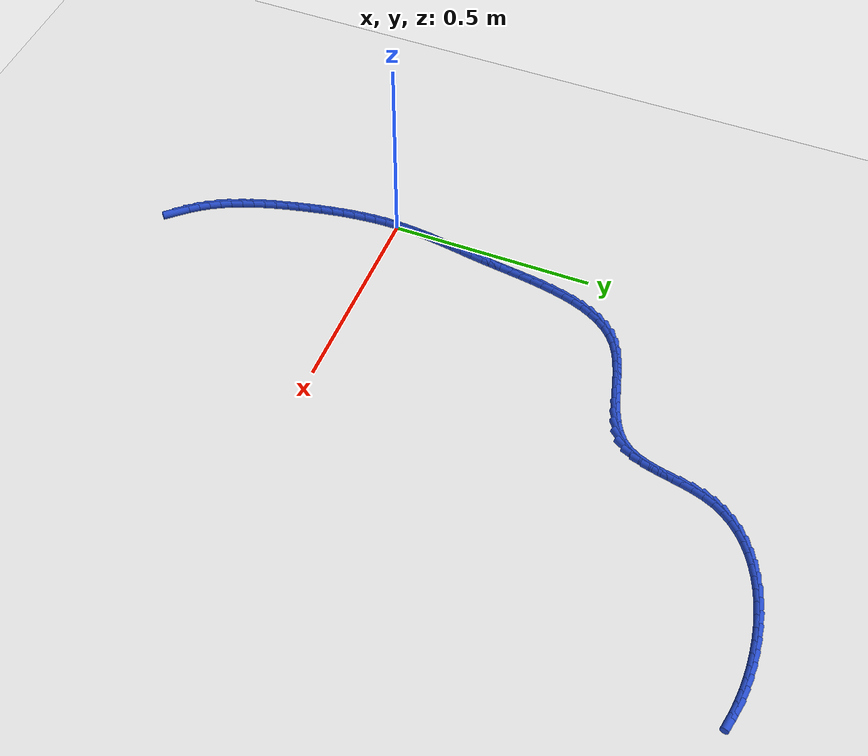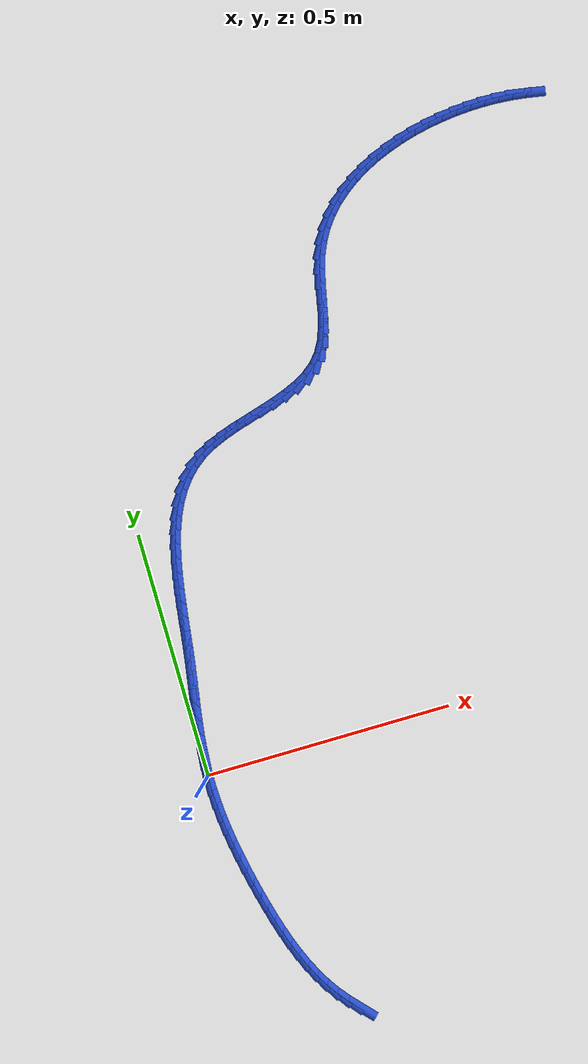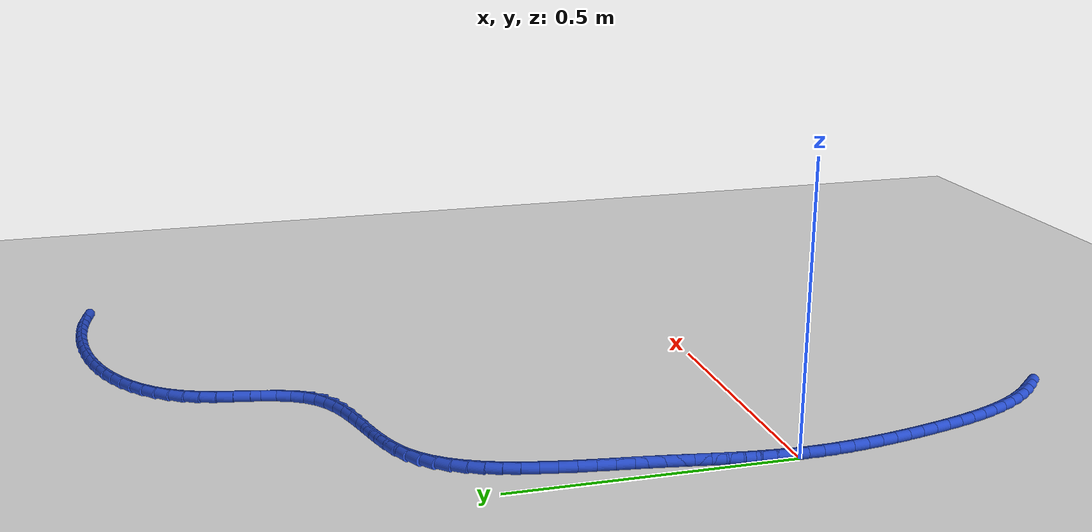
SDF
<sdf version="1.6">
 <world name="default">
  <model name="ground_plane">
   <static>1</static>
   <link name="link">
    <collision name="collision">
     <geometry><plane><normal>0 0 1</normal><size>100 100</size></plane></geometry>
     <surface><friction><ode><mu>100</mu><mu2>50</mu2></ode></friction></surface>
    </collision>
    <visual name="visual">
     <cast_shadows>0</cast_shadows>
     <geometry><plane><normal>0 0 1</normal><size>100 100</size></plane></geometry>
     <material>
      <script><uri>file://media/materials/scripts/gazebo.material</uri><name>Gazebo/WhiteGlow</name></script>
     </material>
    </visual>
   </link>
  </model>
  <model name="line">
   <link name="link_0">
    <pose>-2.2551405187698492e-17 7.632783294297951e-17 0.01 0 1.57 1.5288824515302042</pose>
    <collision name="collision">
     <geometry><cylinder><radius>0.01</radius><length>0.08</length></cylinder></geometry>
    </collision>
    <visual name="visual">
     <material>
      <script><name>Gazebo/Blue</name><uri>file://media/materials/scripts/gazebo.material</uri></script>
     </material>
     <geometry><cylinder><radius>0.01</radius><length>0.08</length></cylinder></geometry>
    </visual>
   </link>
   <link name="link_1">
    <pose>0.0011407970177380307 0.027201705684375417 0.01 0 1.57 1.4927546398349003</pose>
    <collision name="collision">
     <geometry><cylinder><radius>0.01</radius><length>0.08</length></cylinder></geometry>
    </collision>
    <visual name="visual">
     <material>
      <script><name>Gazebo/Blue</name><uri>file://media/materials/scripts/gazebo.material</uri></script>
     </material>
     <geometry><cylinder><radius>0.01</radius><length>0.08</length></cylinder></geometry>
    </visual>
   </link>
   <link name="link_2">
    <pose>0.0032627780462168104 0.054336835409915456 0.01 0 1.57 1.4630782804298281</pose>
    <collision name="collision">
     <geometry><cylinder><radius>0.01</radius><length>0.08</length></cylinder></geometry>
    </collision>
    <visual name="visual">
     <material>
      <script><name>Gazebo/Blue</name><uri>file://media/materials/scripts/gazebo.material</uri></script>
     </material>
     <geometry><cylinder><radius>0.01</radius><length>0.08</length></cylinder></geometry>
    </visual>
   </link>
   <link name="link_3">
    <pose>0.0062002938739071645 0.08150169424468343 0.01 0 1.57 1.4400951984167762</pose>
    <collision name="collision">
     <geometry><cylinder><radius>0.01</radius><length>0.08</length></cylinder></geometry>
    </collision>
    <visual name="visual">
     <material>
      <script><name>Gazebo/Blue</name><uri>file://media/materials/scripts/gazebo.material</uri></script>
     </material>
     <geometry><cylinder><radius>0.01</radius><length>0.08</length></cylinder></geometry>
    </visual>
   </link>
   <link name="link_4">
    <pose>0.009787695289279938 0.10879258725674242 0.01 0 1.57 1.4238743431690295</pose>
    <collision name="collision">
     <geometry><cylinder><radius>0.01</radius><length>0.08</length></cylinder></geometry>
    </collision>
    <visual name="visual">
     <material>
      <script><name>Gazebo/Blue</name><uri>file://media/materials/scripts/gazebo.material</uri></script>
     </material>
     <geometry><cylinder><radius>0.01</radius><length>0.08</length></cylinder></geometry>
    </visual>
   </link>
   <link name="link_5">
    <pose>0.013859333080805973 0.13630581951415557 0.01 0 1.57 1.4143445588500612</pose>
    <collision name="collision">
     <geometry><cylinder><radius>0.01</radius><length>0.08</length></cylinder></geometry>
    </collision>
    <visual name="visual">
     <material>
      <script><name>Gazebo/Blue</name><uri>file://media/materials/scripts/gazebo.material</uri></script>
     </material>
     <geometry><cylinder><radius>0.01</radius><length>0.08</length></cylinder></geometry>
    </visual>
   </link>
   <link name="link_6">
    <pose>0.01824955803695613 0.16413769608498616 0.01 0 1.57 1.4113240917865437</pose>
    <collision name="collision">
     <geometry><cylinder><radius>0.01</radius><length>0.08</length></cylinder></geometry>
    </collision>
    <visual name="visual">
     <material>
      <script><name>Gazebo/Blue</name><uri>file://media/materials/scripts/gazebo.material</uri></script>
     </material>
     <geometry><cylinder><radius>0.01</radius><length>0.08</length></cylinder></geometry>
    </visual>
   </link>
   <link name="link_7">
    <pose>0.022792720946201238 0.19238452203729717 0.01 0 1.57 1.4145438455632329</pose>
    <collision name="collision">
     <geometry><cylinder><radius>0.01</radius><length>0.08</length></cylinder></geometry>
    </collision>
    <visual name="visual">
     <material>
      <script><name>Gazebo/Blue</name><uri>file://media/materials/scripts/gazebo.material</uri></script>
     </material>
     <geometry><cylinder><radius>0.01</radius><length>0.08</length></cylinder></geometry>
    </visual>
   </link>
   <link name="link_8">
    <pose>0.027323172597012148 0.22114260243915182 0.01 0 1.57 1.4236632106234344</pose>
    <collision name="collision">
     <geometry><cylinder><radius>0.01</radius><length>0.08</length></cylinder></geometry>
    </collision>
    <visual name="visual">
     <material>
      <script><name>Gazebo/Blue</name><uri>file://media/materials/scripts/gazebo.material</uri></script>
     </material>
     <geometry><cylinder><radius>0.01</radius><length>0.08</length></cylinder></geometry>
    </visual>
   </link>
   <link name="link_9">
    <pose>0.031675279186698053 0.2505082290229851 0.01 0 1.57 1.4353594793840894</pose>
    <collision name="collision">
     <geometry><cylinder><radius>0.01</radius><length>0.08</length></cylinder></geometry>
    </collision>
    <visual name="visual">
     <material>
      <script><name>Gazebo/Blue</name><uri>file://media/materials/scripts/gazebo.material</uri></script>
     </material>
     <geometry><cylinder><radius>0.01</radius><length>0.08</length></cylinder></geometry>
    </visual>
   </link>
   <link name="link_10">
    <pose>0.03576343894935562 0.2805084295396522 0.01 0 1.57 1.4399337824951841</pose>
    <collision name="collision">
     <geometry><cylinder><radius>0.01</radius><length>0.08</length></cylinder></geometry>
    </collision>
    <visual name="visual">
     <material>
      <script><name>Gazebo/Blue</name><uri>file://media/materials/scripts/gazebo.material</uri></script>
     </material>
     <geometry><cylinder><radius>0.01</radius><length>0.08</length></cylinder></geometry>
    </visual>
   </link>
   <link name="link_11">
    <pose>0.03976861907742631 0.31093952878452275 0.01 0 1.57 1.4357670377201683</pose>
    <collision name="collision">
     <geometry><cylinder><radius>0.01</radius><length>0.08</length></cylinder></geometry>
    </collision>
    <visual name="visual">
     <material>
      <script><name>Gazebo/Blue</name><uri>file://media/materials/scripts/gazebo.material</uri></script>
     </material>
     <geometry><cylinder><radius>0.01</radius><length>0.08</length></cylinder></geometry>
    </visual>
   </link>
   <link name="link_12">
    <pose>0.04392721804772479 0.34154987837105244 0.01 0 1.57 1.4229402103571562</pose>
    <collision name="collision">
     <geometry><cylinder><radius>0.01</radius><length>0.08</length></cylinder></geometry>
    </collision>
    <visual name="visual">
     <material>
      <script><name>Gazebo/Blue</name><uri>file://media/materials/scripts/gazebo.material</uri></script>
     </material>
     <geometry><cylinder><radius>0.01</radius><length>0.08</length></cylinder></geometry>
    </visual>
   </link>
   <link name="link_13">
    <pose>0.048475634337065726 0.372087829912697 0.01 0 1.57 1.4011754274274089</pose>
    <collision name="collision">
     <geometry><cylinder><radius>0.01</radius><length>0.08</length></cylinder></geometry>
    </collision>
    <visual name="visual">
     <material>
      <script><name>Gazebo/Blue</name><uri>file://media/materials/scripts/gazebo.material</uri></script>
     </material>
     <geometry><cylinder><radius>0.01</radius><length>0.08</length></cylinder></geometry>
    </visual>
   </link>
   <link name="link_14">
    <pose>0.053650266422263705 0.40230173502291156 0.01 0 1.57 1.3698474683712236</pose>
    <collision name="collision">
     <geometry><cylinder><radius>0.01</radius><length>0.08</length></cylinder></geometry>
    </collision>
    <visual name="visual">
     <material>
      <script><name>Gazebo/Blue</name><uri>file://media/materials/scripts/gazebo.material</uri></script>
     </material>
     <geometry><cylinder><radius>0.01</radius><length>0.08</length></cylinder></geometry>
    </visual>
   </link>
   <link name="link_15">
    <pose>0.05968751278013341 0.43193994531515206 0.01 0 1.57 1.3279898391232734</pose>
    <collision name="collision">
     <geometry><cylinder><radius>0.01</radius><length>0.08</length></cylinder></geometry>
    </collision>
    <visual name="visual">
     <material>
      <script><name>Gazebo/Blue</name><uri>file://media/materials/scripts/gazebo.material</uri></script>
     </material>
     <geometry><cylinder><radius>0.01</radius><length>0.08</length></cylinder></geometry>
    </visual>
   </link>
   <link name="link_16">
    <pose>0.06682377188748949 0.4607508124028741 0.01 0 1.57 1.2743151041964649</pose>
    <collision name="collision">
     <geometry><cylinder><radius>0.01</radius><length>0.08</length></cylinder></geometry>
    </collision>
    <visual name="visual">
     <material>
      <script><name>Gazebo/Blue</name><uri>file://media/materials/scripts/gazebo.material</uri></script>
     </material>
     <geometry><cylinder><radius>0.01</radius><length>0.08</length></cylinder></geometry>
    </visual>
   </link>
   <link name="link_17">
    <pose>0.07529544222114658 0.4884826878995333 0.01 0 1.57 1.207284943718517</pose>
    <collision name="collision">
     <geometry><cylinder><radius>0.01</radius><length>0.08</length></cylinder></geometry>
    </collision>
    <visual name="visual">
     <material>
      <script><name>Gazebo/Blue</name><uri>file://media/materials/scripts/gazebo.material</uri></script>
     </material>
     <geometry><cylinder><radius>0.01</radius><length>0.08</length></cylinder></geometry>
    </visual>
   </link>
   <link name="link_18">
    <pose>0.08533892225791934 0.5148839234185851 0.01 0 1.57 1.1252891621408851</pose>
    <collision name="collision">
     <geometry><cylinder><radius>0.01</radius><length>0.08</length></cylinder></geometry>
    </collision>
    <visual name="visual">
     <material>
      <script><name>Gazebo/Blue</name><uri>file://media/materials/scripts/gazebo.material</uri></script>
     </material>
     <geometry><cylinder><radius>0.01</radius><length>0.08</length></cylinder></geometry>
    </visual>
   </link>
   <link name="link_19">
    <pose>0.09719061047462232 0.5397028705734853 0.01 0 1.57 1.0270154323651437</pose>
    <collision name="collision">
     <geometry><cylinder><radius>0.01</radius><length>0.08</length></cylinder></geometry>
    </collision>
    <visual name="visual">
     <material>
      <script><name>Gazebo/Blue</name><uri>file://media/materials/scripts/gazebo.material</uri></script>
     </material>
     <geometry><cylinder><radius>0.01</radius><length>0.08</length></cylinder></geometry>
    </visual>
   </link>
   <link name="link_20">
    <pose>0.11108690534807034 0.5626878809776895 0.01 0 1.57 0.9120770612071802</pose>
    <collision name="collision">
     <geometry><cylinder><radius>0.01</radius><length>0.08</length></cylinder></geometry>
    </collision>
    <visual name="visual">
     <material>
      <script><name>Gazebo/Blue</name><uri>file://media/materials/scripts/gazebo.material</uri></script>
     </material>
     <geometry><cylinder><radius>0.01</radius><length>0.08</length></cylinder></geometry>
    </visual>
   </link>
   <link name="link_21">
    <pose>0.12726420535507788 0.583587306244653 0.01 0 1.57 0.7818414710279133</pose>
    <collision name="collision">
     <geometry><cylinder><radius>0.01</radius><length>0.08</length></cylinder></geometry>
    </collision>
    <visual name="visual">
     <material>
      <script><name>Gazebo/Blue</name><uri>file://media/materials/scripts/gazebo.material</uri></script>
     </material>
     <geometry><cylinder><radius>0.01</radius><length>0.08</length></cylinder></geometry>
    </visual>
   </link>
   <link name="link_22">
    <pose>0.14595890897245964 0.6021494979878318 0.01 0 1.57 0.6401266976176745</pose>
    <collision name="collision">
     <geometry><cylinder><radius>0.01</radius><length>0.08</length></cylinder></geometry>
    </collision>
    <visual name="visual">
     <material>
      <script><name>Gazebo/Blue</name><uri>file://media/materials/scripts/gazebo.material</uri></script>
     </material>
     <geometry><cylinder><radius>0.01</radius><length>0.08</length></cylinder></geometry>
    </visual>
   </link>
   <link name="link_23">
    <pose>0.16740725675150597 0.6181229570853587 0.01 0 1.57 0.5026025022561849</pose>
    <collision name="collision">
     <geometry><cylinder><radius>0.01</radius><length>0.08</length></cylinder></geometry>
    </collision>
    <visual name="visual">
     <material>
      <script><name>Gazebo/Blue</name><uri>file://media/materials/scripts/gazebo.material</uri></script>
     </material>
     <geometry><cylinder><radius>0.01</radius><length>0.08</length></cylinder></geometry>
    </visual>
   </link>
   <link name="link_24">
    <pose>0.19164470617275342 0.6314459562738525 0.01 0 1.57 0.3994080841491121</pose>
    <collision name="collision">
     <geometry><cylinder><radius>0.01</radius><length>0.08</length></cylinder></geometry>
    </collision>
    <visual name="visual">
     <material>
      <script><name>Gazebo/Blue</name><uri>file://media/materials/scripts/gazebo.material</uri></script>
     </material>
     <geometry><cylinder><radius>0.01</radius><length>0.08</length></cylinder></geometry>
    </visual>
   </link>
   <link name="link_25">
    <pose>0.21811286425857576 0.6426180511943388 0.01 0 1.57 0.3307224995366802</pose>
    <collision name="collision">
     <geometry><cylinder><radius>0.01</radius><length>0.08</length></cylinder></geometry>
    </collision>
    <visual name="visual">
     <material>
      <script><name>Gazebo/Blue</name><uri>file://media/materials/scripts/gazebo.material</uri></script>
     </material>
     <geometry><cylinder><radius>0.01</radius><length>0.08</length></cylinder></geometry>
    </visual>
   </link>
   <link name="link_26">
    <pose>0.24614407206001432 0.6522420711670989 0.01 0 1.57 0.29148200123546625</pose>
    <collision name="collision">
     <geometry><cylinder><radius>0.01</radius><length>0.08</length></cylinder></geometry>
    </collision>
    <visual name="visual">
     <material>
      <script><name>Gazebo/Blue</name><uri>file://media/materials/scripts/gazebo.material</uri></script>
     </material>
     <geometry><cylinder><radius>0.01</radius><length>0.08</length></cylinder></geometry>
    </visual>
   </link>
   <link name="link_27">
    <pose>0.27507067062811036 0.6609208455124145 0.01 0 1.57 0.27850733676640993</pose>
    <collision name="collision">
     <geometry><cylinder><radius>0.01</radius><length>0.08</length></cylinder></geometry>
    </collision>
    <visual name="visual">
     <material>
      <script><name>Gazebo/Blue</name><uri>file://media/materials/scripts/gazebo.material</uri></script>
     </material>
     <geometry><cylinder><radius>0.01</radius><length>0.08</length></cylinder></geometry>
    </visual>
   </link>
   <link name="link_28">
    <pose>0.30422500101390554 0.6692572035505667 0.01 0 1.57 0.2908959764183764</pose>
    <collision name="collision">
     <geometry><cylinder><radius>0.01</radius><length>0.08</length></cylinder></geometry>
    </collision>
    <visual name="visual">
     <material>
      <script><name>Gazebo/Blue</name><uri>file://media/materials/scripts/gazebo.material</uri></script>
     </material>
     <geometry><cylinder><radius>0.01</radius><length>0.08</length></cylinder></geometry>
    </visual>
   </link>
   <link name="link_29">
    <pose>0.33293940426844104 0.6778539746018372 0.01 0 1.57 0.3301294121062424</pose>
    <collision name="collision">
     <geometry><cylinder><radius>0.01</radius><length>0.08</length></cylinder></geometry>
    </collision>
    <visual name="visual">
     <material>
      <script><name>Gazebo/Blue</name><uri>file://media/materials/scripts/gazebo.material</uri></script>
     </material>
     <geometry><cylinder><radius>0.01</radius><length>0.08</length></cylinder></geometry>
    </visual>
   </link>
   <link name="link_30">
    <pose>0.3605462214427583 0.6873139879865076 0.01 0 1.57 0.40015341035838486</pose>
    <collision name="collision">
     <geometry><cylinder><radius>0.01</radius><length>0.08</length></cylinder></geometry>
    </collision>
    <visual name="visual">
     <material>
      <script><name>Gazebo/Blue</name><uri>file://media/materials/scripts/gazebo.material</uri></script>
     </material>
     <geometry><cylinder><radius>0.01</radius><length>0.08</length></cylinder></geometry>
    </visual>
   </link>
   <link name="link_31">
    <pose>0.38637779358789853 0.6982400730248589 0.01 0 1.57 0.5071403715740864</pose>
    <collision name="collision">
     <geometry><cylinder><radius>0.01</radius><length>0.08</length></cylinder></geometry>
    </collision>
    <visual name="visual">
     <material>
      <script><name>Gazebo/Blue</name><uri>file://media/materials/scripts/gazebo.material</uri></script>
     </material>
     <geometry><cylinder><radius>0.01</radius><length>0.08</length></cylinder></geometry>
    </visual>
   </link>
   <link name="link_32">
    <pose>0.4097664617549033 0.7112350590371729 0.01 0 1.57 0.6578043464636418</pose>
    <collision name="collision">
     <geometry><cylinder><radius>0.01</radius><length>0.08</length></cylinder></geometry>
    </collision>
    <visual name="visual">
     <material>
      <script><name>Gazebo/Blue</name><uri>file://media/materials/scripts/gazebo.material</uri></script>
     </material>
     <geometry><cylinder><radius>0.01</radius><length>0.08</length></cylinder></geometry>
    </visual>
   </link>
   <link name="link_33">
    <pose>0.4300445669948138 0.726901775343731 0.01 0 1.57 0.8539025543426916</pose>
    <collision name="collision">
     <geometry><cylinder><radius>0.01</radius><length>0.08</length></cylinder></geometry>
    </collision>
    <visual name="visual">
     <material>
      <script><name>Gazebo/Blue</name><uri>file://media/materials/scripts/gazebo.material</uri></script>
     </material>
     <geometry><cylinder><radius>0.01</radius><length>0.08</length></cylinder></geometry>
    </visual>
   </link>
   <link name="link_34">
    <pose>0.4465497264667318 0.7458386767341181 0.01 0 1.57 1.0576159487594454</pose>
    <collision name="collision">
     <geometry><cylinder><radius>0.01</radius><length>0.08</length></cylinder></geometry>
    </collision>
    <visual name="visual">
     <material>
      <script><name>Gazebo/Blue</name><uri>file://media/materials/scripts/gazebo.material</uri></script>
     </material>
     <geometry><cylinder><radius>0.01</radius><length>0.08</length></cylinder></geometry>
    </visual>
   </link>
   <link name="link_35">
    <pose>0.45915255733565113 0.7682022966308191 0.01 0 1.57 1.2075177611733987</pose>
    <collision name="collision">
     <geometry><cylinder><radius>0.01</radius><length>0.08</length></cylinder></geometry>
    </collision>
    <visual name="visual">
     <material>
      <script><name>Gazebo/Blue</name><uri>file://media/materials/scripts/gazebo.material</uri></script>
     </material>
     <geometry><cylinder><radius>0.01</radius><length>0.08</length></cylinder></geometry>
    </visual>
   </link>
   <link name="link_36">
    <pose>0.4687064988021745 0.7933342903084951 0.01 0 1.57 1.30253170234999</pose>
    <collision name="collision">
     <geometry><cylinder><radius>0.01</radius><length>0.08</length></cylinder></geometry>
    </collision>
    <visual name="visual">
     <material>
      <script><name>Gazebo/Blue</name><uri>file://media/materials/scripts/gazebo.material</uri></script>
     </material>
     <geometry><cylinder><radius>0.01</radius><length>0.08</length></cylinder></geometry>
    </visual>
   </link>
   <link name="link_37">
    <pose>0.4761709323238113 0.8204884741178128 0.01 0 1.57 1.351574828118892</pose>
    <collision name="collision">
     <geometry><cylinder><radius>0.01</radius><length>0.08</length></cylinder></geometry>
    </collision>
    <visual name="visual">
     <material>
      <script><name>Gazebo/Blue</name><uri>file://media/materials/scripts/gazebo.material</uri></script>
     </material>
     <geometry><cylinder><radius>0.01</radius><length>0.08</length></cylinder></geometry>
    </visual>
   </link>
   <link name="link_38">
    <pose>0.4825052393580709 0.8489186644094397 0.01 0 1.57 1.3610951331240515</pose>
    <collision name="collision">
     <geometry><cylinder><radius>0.01</radius><length>0.08</length></cylinder></geometry>
    </collision>
    <visual name="visual">
     <material>
      <script><name>Gazebo/Blue</name><uri>file://media/materials/scripts/gazebo.material</uri></script>
     </material>
     <geometry><cylinder><radius>0.01</radius><length>0.08</length></cylinder></geometry>
    </visual>
   </link>
   <link name="link_39">
    <pose>0.4886688013624628 0.877878677534043 0.01 0 1.57 1.3334848886120183</pose>
    <collision name="collision">
     <geometry><cylinder><radius>0.01</radius><length>0.08</length></cylinder></geometry>
    </collision>
    <visual name="visual">
     <material>
      <script><name>Gazebo/Blue</name><uri>file://media/materials/scripts/gazebo.material</uri></script>
     </material>
     <geometry><cylinder><radius>0.01</radius><length>0.08</length></cylinder></geometry>
    </visual>
   </link>
   <link name="link_40">
    <pose>0.4956209997944965 0.9066223298422902 0.01 0 1.57 1.2673009613841848</pose>
    <collision name="collision">
     <geometry><cylinder><radius>0.01</radius><length>0.08</length></cylinder></geometry>
    </collision>
    <visual name="visual">
     <material>
      <script><name>Gazebo/Blue</name><uri>file://media/materials/scripts/gazebo.material</uri></script>
     </material>
     <geometry><cylinder><radius>0.01</radius><length>0.08</length></cylinder></geometry>
    </visual>
   </link>
   <link name="link_41">
    <pose>0.5043212161116815 0.9344034376848478 0.01 0 1.57 1.1602106038765794</pose>
    <collision name="collision">
     <geometry><cylinder><radius>0.01</radius><length>0.08</length></cylinder></geometry>
    </collision>
    <visual name="visual">
     <material>
      <script><name>Gazebo/Blue</name><uri>file://media/materials/scripts/gazebo.material</uri></script>
     </material>
     <geometry><cylinder><radius>0.01</radius><length>0.08</length></cylinder></geometry>
    </visual>
   </link>
   <link name="link_42">
    <pose>0.5156839773709774 0.9605050616831939 0.01 0 1.57 1.036266361393758</pose>
    <collision name="collision">
     <geometry><cylinder><radius>0.01</radius><length>0.08</length></cylinder></geometry>
    </collision>
    <visual name="visual">
     <material>
      <script><name>Gazebo/Blue</name><uri>file://media/materials/scripts/gazebo.material</uri></script>
     </material>
     <geometry><cylinder><radius>0.01</radius><length>0.08</length></cylinder></geometry>
    </visual>
   </link>
   <link name="link_43">
    <pose>0.5299701821667856 0.9846364165826844 0.01 0 1.57 0.9177967141740887</pose>
    <collision name="collision">
     <geometry><cylinder><radius>0.01</radius><length>0.08</length></cylinder></geometry>
    </collision>
    <visual name="visual">
     <material>
      <script><name>Gazebo/Blue</name><uri>file://media/materials/scripts/gazebo.material</uri></script>
     </material>
     <geometry><cylinder><radius>0.01</radius><length>0.08</length></cylinder></geometry>
    </visual>
   </link>
   <link name="link_44">
    <pose>0.5469463803943242 1.0068290236817978 0.01 0 1.57 0.8073723883056089</pose>
    <collision name="collision">
     <geometry><cylinder><radius>0.01</radius><length>0.08</length></cylinder></geometry>
    </collision>
    <visual name="visual">
     <material>
      <script><name>Gazebo/Blue</name><uri>file://media/materials/scripts/gazebo.material</uri></script>
     </material>
     <geometry><cylinder><radius>0.01</radius><length>0.08</length></cylinder></geometry>
    </visual>
   </link>
   <link name="link_45">
    <pose>0.566366904526244 1.0271223698210732 0.01 0 1.57 0.7060298740020946</pose>
    <collision name="collision">
     <geometry><cylinder><radius>0.01</radius><length>0.08</length></cylinder></geometry>
    </collision>
    <visual name="visual">
     <material>
      <script><name>Gazebo/Blue</name><uri>file://media/materials/scripts/gazebo.material</uri></script>
     </material>
     <geometry><cylinder><radius>0.01</radius><length>0.08</length></cylinder></geometry>
    </visual>
   </link>
   <link name="link_46">
    <pose>0.587986087035196 1.0455559418410505 0.01 0 1.57 0.6139293248139052</pose>
    <collision name="collision">
     <geometry><cylinder><radius>0.01</radius><length>0.08</length></cylinder></geometry>
    </collision>
    <visual name="visual">
     <material>
      <script><name>Gazebo/Blue</name><uri>file://media/materials/scripts/gazebo.material</uri></script>
     </material>
     <geometry><cylinder><radius>0.01</radius><length>0.08</length></cylinder></geometry>
    </visual>
   </link>
   <link name="link_47">
    <pose>0.6115582603938308 1.062169226582269 0.01 0 1.57 0.5306122185136694</pose>
    <collision name="collision">
     <geometry><cylinder><radius>0.01</radius><length>0.08</length></cylinder></geometry>
    </collision>
    <visual name="visual">
     <material>
      <script><name>Gazebo/Blue</name><uri>file://media/materials/scripts/gazebo.material</uri></script>
     </material>
     <geometry><cylinder><radius>0.01</radius><length>0.08</length></cylinder></geometry>
    </visual>
   </link>
   <link name="link_48">
    <pose>0.6368377570747994 1.0770017108852679 0.01 0 1.57 0.45525390661103365</pose>
    <collision name="collision">
     <geometry><cylinder><radius>0.01</radius><length>0.08</length></cylinder></geometry>
    </collision>
    <visual name="visual">
     <material>
      <script><name>Gazebo/Blue</name><uri>file://media/materials/scripts/gazebo.material</uri></script>
     </material>
     <geometry><cylinder><radius>0.01</radius><length>0.08</length></cylinder></geometry>
    </visual>
   </link>
   <link name="link_49">
    <pose>0.6635789095507525 1.0900928815905857 0.01 0 1.57 0.386857241301085</pose>
    <collision name="collision">
     <geometry><cylinder><radius>0.01</radius><length>0.08</length></cylinder></geometry>
    </collision>
    <visual name="visual">
     <material>
      <script><name>Gazebo/Blue</name><uri>file://media/materials/scripts/gazebo.material</uri></script>
     </material>
     <geometry><cylinder><radius>0.01</radius><length>0.08</length></cylinder></geometry>
    </visual>
   </link>
   <link name="link_50">
    <pose>0.6915360502943412 1.101482225538763 0.01 0 1.57 0.3243777602206729</pose>
    <collision name="collision">
     <geometry><cylinder><radius>0.01</radius><length>0.08</length></cylinder></geometry>
    </collision>
    <visual name="visual">
     <material>
      <script><name>Gazebo/Blue</name><uri>file://media/materials/scripts/gazebo.material</uri></script>
     </material>
     <geometry><cylinder><radius>0.01</radius><length>0.08</length></cylinder></geometry>
    </visual>
   </link>
   <link name="link_51">
    <pose>0.7204635117782157 1.111209229570338 0.01 0 1.57 0.26679220355363736</pose>
    <collision name="collision">
     <geometry><cylinder><radius>0.01</radius><length>0.08</length></cylinder></geometry>
    </collision>
    <visual name="visual">
     <material>
      <script><name>Gazebo/Blue</name><uri>file://media/materials/scripts/gazebo.material</uri></script>
     </material>
     <geometry><cylinder><radius>0.01</radius><length>0.08</length></cylinder></geometry>
    </visual>
   </link>
   <link name="link_52">
    <pose>0.7501156264750274 1.1193133805258506 0.01 0 1.57 0.21312706283663427</pose>
    <collision name="collision">
     <geometry><cylinder><radius>0.01</radius><length>0.08</length></cylinder></geometry>
    </collision>
    <visual name="visual">
     <material>
      <script><name>Gazebo/Blue</name><uri>file://media/materials/scripts/gazebo.material</uri></script>
     </material>
     <geometry><cylinder><radius>0.01</radius><length>0.08</length></cylinder></geometry>
    </visual>
   </link>
   <link name="link_53">
    <pose>0.7802467268574268 1.12583416524584 0.01 0 1.57 0.16246126451664947</pose>
    <collision name="collision">
     <geometry><cylinder><radius>0.01</radius><length>0.08</length></cylinder></geometry>
    </collision>
    <visual name="visual">
     <material>
      <script><name>Gazebo/Blue</name><uri>file://media/materials/scripts/gazebo.material</uri></script>
     </material>
     <geometry><cylinder><radius>0.01</radius><length>0.08</length></cylinder></geometry>
    </visual>
   </link>
   <link name="link_54">
    <pose>0.8106111453980649 1.1308110705708454 0.01 0 1.57 0.11391249476696579</pose>
    <collision name="collision">
     <geometry><cylinder><radius>0.01</radius><length>0.08</length></cylinder></geometry>
    </collision>
    <visual name="visual">
     <material>
      <script><name>Gazebo/Blue</name><uri>file://media/materials/scripts/gazebo.material</uri></script>
     </material>
     <geometry><cylinder><radius>0.01</radius><length>0.08</length></cylinder></geometry>
    </visual>
   </link>
   <link name="link_55">
    <pose>0.8409632145695928 1.134283583341406 0.01 0 1.57 0.06661239130415425</pose>
    <collision name="collision">
     <geometry><cylinder><radius>0.01</radius><length>0.08</length></cylinder></geometry>
    </collision>
    <visual name="visual">
     <material>
      <script><name>Gazebo/Blue</name><uri>file://media/materials/scripts/gazebo.material</uri></script>
     </material>
     <geometry><cylinder><radius>0.01</radius><length>0.08</length></cylinder></geometry>
    </visual>
   </link>
   <link name="link_56">
    <pose>0.8710572668446603 1.1362911903980608 0.01 0 1.57 0.019647832347006882</pose>
    <collision name="collision">
     <geometry><cylinder><radius>0.01</radius><length>0.08</length></cylinder></geometry>
    </collision>
    <visual name="visual">
     <material>
      <script><name>Gazebo/Blue</name><uri>file://media/materials/scripts/gazebo.material</uri></script>
     </material>
     <geometry><cylinder><radius>0.01</radius><length>0.08</length></cylinder></geometry>
    </visual>
   </link>
   <link name="link_57">
    <pose>0.900659563511931 1.1368728862140893 0.01 0 1.57 -0.027949812320081664</pose>
    <collision name="collision">
     <geometry><cylinder><radius>0.01</radius><length>0.08</length></cylinder></geometry>
    </collision>
    <visual name="visual">
     <material>
      <script><name>Gazebo/Blue</name><uri>file://media/materials/scripts/gazebo.material</uri></script>
     </material>
     <geometry><cylinder><radius>0.01</radius><length>0.08</length></cylinder></geometry>
    </visual>
   </link>
   <link name="link_58">
    <pose>0.9296933287044586 1.136061186550574 0.01 0 1.57 -0.07624535942908973</pose>
    <collision name="collision">
     <geometry><cylinder><radius>0.01</radius><length>0.08</length></cylinder></geometry>
    </collision>
    <visual name="visual">
     <material>
      <script><name>Gazebo/Blue</name><uri>file://media/materials/scripts/gazebo.material</uri></script>
     </material>
     <geometry><cylinder><radius>0.01</radius><length>0.08</length></cylinder></geometry>
    </visual>
   </link>
   <link name="link_59">
    <pose>0.9581924739721214 1.133884038495547 0.01 0 1.57 -0.1248701350980151</pose>
    <collision name="collision">
     <geometry><cylinder><radius>0.01</radius><length>0.08</length></cylinder></geometry>
    </collision>
    <visual name="visual">
     <material>
      <script><name>Gazebo/Blue</name><uri>file://media/materials/scripts/gazebo.material</uri></script>
     </material>
     <geometry><cylinder><radius>0.01</radius><length>0.08</length></cylinder></geometry>
    </visual>
   </link>
   <link name="link_60">
    <pose>0.9861932291538245 1.1303692934486158 0.01 0 1.57 -0.17343016236885703</pose>
    <collision name="collision">
     <geometry><cylinder><radius>0.01</radius><length>0.08</length></cylinder></geometry>
    </collision>
    <visual name="visual">
     <material>
      <script><name>Gazebo/Blue</name><uri>file://media/materials/scripts/gazebo.material</uri></script>
     </material>
     <geometry><cylinder><radius>0.01</radius><length>0.08</length></cylinder></geometry>
    </visual>
   </link>
   <link name="link_230">
    <pose>0.16010208140143034 -0.5246726122325068 0.01 0 1.57 -0.8298800274348807</pose>
    <collision name="collision">
     <geometry><cylinder><radius>0.01</radius><length>0.08</length></cylinder></geometry>
    </collision>
    <visual name="visual">
     <material>
      <script><name>Gazebo/Blue</name><uri>file://media/materials/scripts/gazebo.material</uri></script>
     </material>
     <geometry><cylinder><radius>0.01</radius><length>0.08</length></cylinder></geometry>
    </visual>
   </link>
   <link name="link_231">
    <pose>0.142217371136692 -0.505121591729344 0.01 0 1.57 -0.8958675727034641</pose>
    <collision name="collision">
     <geometry><cylinder><radius>0.01</radius><length>0.08</length></cylinder></geometry>
    </collision>
    <visual name="visual">
     <material>
      <script><name>Gazebo/Blue</name><uri>file://media/materials/scripts/gazebo.material</uri></script>
     </material>
     <geometry><cylinder><radius>0.01</radius><length>0.08</length></cylinder></geometry>
    </visual>
   </link>
   <link name="link_232">
    <pose>0.12562565578075702 -0.48438993072054437 0.01 0 1.57 -0.9727536066329996</pose>
    <collision name="collision">
     <geometry><cylinder><radius>0.01</radius><length>0.08</length></cylinder></geometry>
    </collision>
    <visual name="visual">
     <material>
      <script><name>Gazebo/Blue</name><uri>file://media/materials/scripts/gazebo.material</uri></script>
     </material>
     <geometry><cylinder><radius>0.01</radius><length>0.08</length></cylinder></geometry>
    </visual>
   </link>
   <link name="link_233">
    <pose>0.11052711020996826 -0.4622274900649966 0.01 0 1.57 -1.0453656248503238</pose>
    <collision name="collision">
     <geometry><cylinder><radius>0.01</radius><length>0.08</length></cylinder></geometry>
    </collision>
    <visual name="visual">
     <material>
      <script><name>Gazebo/Blue</name><uri>file://media/materials/scripts/gazebo.material</uri></script>
     </material>
     <geometry><cylinder><radius>0.01</radius><length>0.08</length></cylinder></geometry>
    </visual>
   </link>
   <link name="link_234">
    <pose>0.09688430638387181 -0.4386971150368183 0.01 0 1.57 -1.1088202532515103</pose>
    <collision name="collision">
     <geometry><cylinder><radius>0.01</radius><length>0.08</length></cylinder></geometry>
    </collision>
    <visual name="visual">
     <material>
      <script><name>Gazebo/Blue</name><uri>file://media/materials/scripts/gazebo.material</uri></script>
     </material>
     <geometry><cylinder><radius>0.01</radius><length>0.08</length></cylinder></geometry>
    </visual>
   </link>
   <link name="link_235">
    <pose>0.08457442746511801 -0.4139741300119167 0.01 0 1.57 -1.163661685598506</pose>
    <collision name="collision">
     <geometry><cylinder><radius>0.01</radius><length>0.08</length></cylinder></geometry>
    </collision>
    <visual name="visual">
     <material>
      <script><name>Gazebo/Blue</name><uri>file://media/materials/scripts/gazebo.material</uri></script>
     </material>
     <geometry><cylinder><radius>0.01</radius><length>0.08</length></cylinder></geometry>
    </visual>
   </link>
   <link name="link_236">
    <pose>0.07347454498012908 -0.388234006419947 0.01 0 1.57 -1.2105540685848521</pose>
    <collision name="collision">
     <geometry><cylinder><radius>0.01</radius><length>0.08</length></cylinder></geometry>
    </collision>
    <visual name="visual">
     <material>
      <script><name>Gazebo/Blue</name><uri>file://media/materials/scripts/gazebo.material</uri></script>
     </material>
     <geometry><cylinder><radius>0.01</radius><length>0.08</length></cylinder></geometry>
    </visual>
   </link>
   <link name="link_237">
    <pose>0.06346173045532733 -0.36165221569056466 0.01 0 1.57 -1.2501687850790744</pose>
    <collision name="collision">
     <geometry><cylinder><radius>0.01</radius><length>0.08</length></cylinder></geometry>
    </collision>
    <visual name="visual">
     <material>
      <script><name>Gazebo/Blue</name><uri>file://media/materials/scripts/gazebo.material</uri></script>
     </material>
     <geometry><cylinder><radius>0.01</radius><length>0.08</length></cylinder></geometry>
    </visual>
   </link>
   <link name="link_238">
    <pose>0.05441305541713495 -0.3344042292534248 0.01 0 1.57 -1.2831191699157685</pose>
    <collision name="collision">
     <geometry><cylinder><radius>0.01</radius><length>0.08</length></cylinder></geometry>
    </collision>
    <visual name="visual">
     <material>
      <script><name>Gazebo/Blue</name><uri>file://media/materials/scripts/gazebo.material</uri></script>
     </material>
     <geometry><cylinder><radius>0.01</radius><length>0.08</length></cylinder></geometry>
    </visual>
   </link>
   <link name="link_239">
    <pose>0.04620559139197421 -0.3066655185381828 0.01 0 1.57 -1.3099235775241922</pose>
    <collision name="collision">
     <geometry><cylinder><radius>0.01</radius><length>0.08</length></cylinder></geometry>
    </collision>
    <visual name="visual">
     <material>
      <script><name>Gazebo/Blue</name><uri>file://media/materials/scripts/gazebo.material</uri></script>
     </material>
     <geometry><cylinder><radius>0.01</radius><length>0.08</length></cylinder></geometry>
    </visual>
   </link>
   <link name="link_240">
    <pose>0.03871640990626757 -0.27861155497449475 0.01 0 1.57 -1.3309855082501378</pose>
    <collision name="collision">
     <geometry><cylinder><radius>0.01</radius><length>0.08</length></cylinder></geometry>
    </collision>
    <visual name="visual">
     <material>
      <script><name>Gazebo/Blue</name><uri>file://media/materials/scripts/gazebo.material</uri></script>
     </material>
     <geometry><cylinder><radius>0.01</radius><length>0.08</length></cylinder></geometry>
    </visual>
   </link>
   <link name="link_241">
    <pose>0.031822582486436844 -0.25041780999201424 0.01 0 1.57 -1.3476812423208548</pose>
    <collision name="collision">
     <geometry><cylinder><radius>0.01</radius><length>0.08</length></cylinder></geometry>
    </collision>
    <visual name="visual">
     <material>
      <script><name>Gazebo/Blue</name><uri>file://media/materials/scripts/gazebo.material</uri></script>
     </material>
     <geometry><cylinder><radius>0.01</radius><length>0.08</length></cylinder></geometry>
    </visual>
   </link>
   <link name="link_242">
    <pose>0.025428647433611513 -0.22223735835050448 0.01 0 1.57 -1.3654448796683378</pose>
    <collision name="collision">
     <geometry><cylinder><radius>0.01</radius><length>0.08</length></cylinder></geometry>
    </collision>
    <visual name="visual">
     <material>
      <script><name>Gazebo/Blue</name><uri>file://media/materials/scripts/gazebo.material</uri></script>
     </material>
     <geometry><cylinder><radius>0.01</radius><length>0.08</length></cylinder></geometry>
    </visual>
   </link>
   <link name="link_243">
    <pose>0.01957123072477973 -0.19411556925985063 0.01 0 1.57 -1.385957337752648</pose>
    <collision name="collision">
     <geometry><cylinder><radius>0.01</radius><length>0.08</length></cylinder></geometry>
    </collision>
    <visual name="visual">
     <material>
      <script><name>Gazebo/Blue</name><uri>file://media/materials/scripts/gazebo.material</uri></script>
     </material>
     <geometry><cylinder><radius>0.01</radius><length>0.08</length></cylinder></geometry>
    </visual>
   </link>
   <link name="link_244">
    <pose>0.014326615038892128 -0.16606547547717374 0.01 0 1.57 -1.4093159478815493</pose>
    <collision name="collision">
     <geometry><cylinder><radius>0.01</radius><length>0.08</length></cylinder></geometry>
    </collision>
    <visual name="visual">
     <material>
      <script><name>Gazebo/Blue</name><uri>file://media/materials/scripts/gazebo.material</uri></script>
     </material>
     <geometry><cylinder><radius>0.01</radius><length>0.08</length></cylinder></geometry>
    </visual>
   </link>
   <link name="link_245">
    <pose>0.009771090690138097 -0.13810010353374827 0.01 0 1.57 -1.4356204880588561</pose>
    <collision name="collision">
     <geometry><cylinder><radius>0.01</radius><length>0.08</length></cylinder></geometry>
    </collision>
    <visual name="visual">
     <material>
      <script><name>Gazebo/Blue</name><uri>file://media/materials/scripts/gazebo.material</uri></script>
     </material>
     <geometry><cylinder><radius>0.01</radius><length>0.08</length></cylinder></geometry>
    </visual>
   </link>
   <link name="link_246">
    <pose>0.0059809479927070185 -0.11023247996084873 0.01 0 1.57 -1.4649682006924403</pose>
    <collision name="collision">
     <geometry><cylinder><radius>0.01</radius><length>0.08</length></cylinder></geometry>
    </collision>
    <visual name="visual">
     <material>
      <script><name>Gazebo/Blue</name><uri>file://media/materials/scripts/gazebo.material</uri></script>
     </material>
     <geometry><cylinder><radius>0.01</radius><length>0.08</length></cylinder></geometry>
    </visual>
   </link>
   <link name="link_247">
    <pose>0.003032477260788282 -0.08247563128974957 0.01 0 1.57 -1.4974469902279657</pose>
    <collision name="collision">
     <geometry><cylinder><radius>0.01</radius><length>0.08</length></cylinder></geometry>
    </collision>
    <visual name="visual">
     <material>
      <script><name>Gazebo/Blue</name><uri>file://media/materials/scripts/gazebo.material</uri></script>
     </material>
     <geometry><cylinder><radius>0.01</radius><length>0.08</length></cylinder></geometry>
    </visual>
   </link>
   <link name="link_248">
    <pose>0.0010019688085712718 -0.05484258405172538 0.01 0 1.57 -1.533126941827992</pose>
    <collision name="collision">
     <geometry><cylinder><radius>0.01</radius><length>0.08</length></cylinder></geometry>
    </collision>
    <visual name="visual">
     <material>
      <script><name>Gazebo/Blue</name><uri>file://media/materials/scripts/gazebo.material</uri></script>
     </material>
     <geometry><cylinder><radius>0.01</radius><length>0.08</length></cylinder></geometry>
    </visual>
   </link>
   <link name="link_249">
    <pose>-3.428704975462667e-05 -0.027346364778050608 0.01 0 1.57 1.5695425209575895</pose>
    <collision name="collision">
     <geometry><cylinder><radius>0.01</radius><length>0.08</length></cylinder></geometry>
    </collision>
    <visual name="visual">
     <material>
      <script><name>Gazebo/Blue</name><uri>file://media/materials/scripts/gazebo.material</uri></script>
     </material>
     <geometry><cylinder><radius>0.01</radius><length>0.08</length></cylinder></geometry>
    </visual>
   </link>
   <link name="link_250">
    <pose>-2.688821387764051e-17 2.42861286636753e-16 0.01 0 1.57 1.5273737159808345</pose>
    <collision name="collision">
     <geometry><cylinder><radius>0.01</radius><length>0.08</length></cylinder></geometry>
    </collision>
    <visual name="visual">
     <material>
      <script><name>Gazebo/Blue</name><uri>file://media/materials/scripts/gazebo.material</uri></script>
     </material>
     <geometry><cylinder><radius>0.01</radius><length>0.08</length></cylinder></geometry>
    </visual>
   </link>
   <link name="link_251">
    <pose>0.0011811202720244576 0.027183483751152676 0.01 0 1.57 1.482009284004773</pose>
    <collision name="collision">
     <geometry><cylinder><radius>0.01</radius><length>0.08</length></cylinder></geometry>
    </collision>
    <visual name="visual">
     <material>
      <script><name>Gazebo/Blue</name><uri>file://media/materials/scripts/gazebo.material</uri></script>
     </material>
     <geometry><cylinder><radius>0.01</radius><length>0.08</length></cylinder></geometry>
    </visual>
   </link>
   <link name="link_252">
    <pose>0.003585364080508212 0.054191059944132175 0.01 0 1.57 1.5047310695860396</pose>
    <collision name="collision">
     <geometry><cylinder><radius>0.01</radius><length>0.08</length></cylinder></geometry>
    </collision>
    <visual name="visual">
     <material>
      <script><name>Gazebo/Blue</name><uri>file://media/materials/scripts/gazebo.material</uri></script>
     </material>
     <geometry><cylinder><radius>0.01</radius><length>0.08</length></cylinder></geometry>
    </visual>
   </link>
  </model>
 </world>
</sdf>
